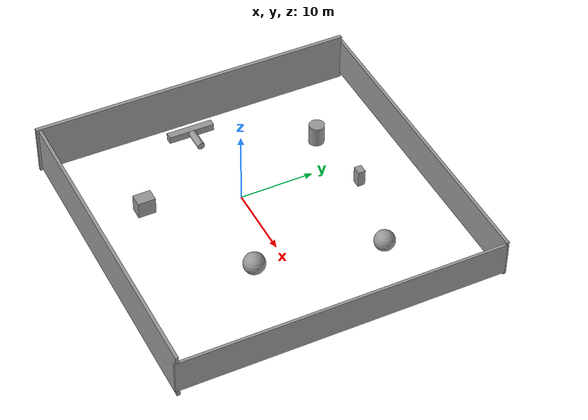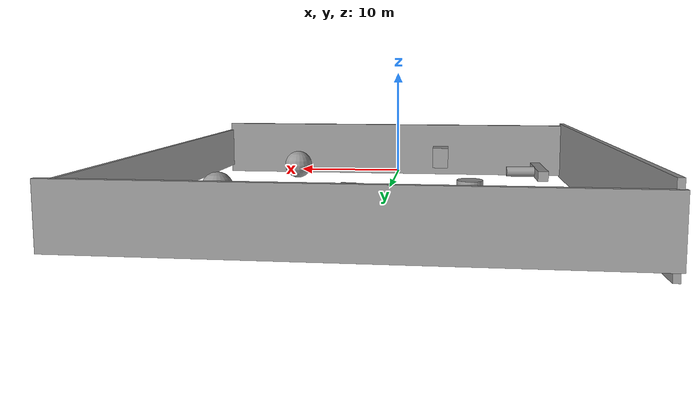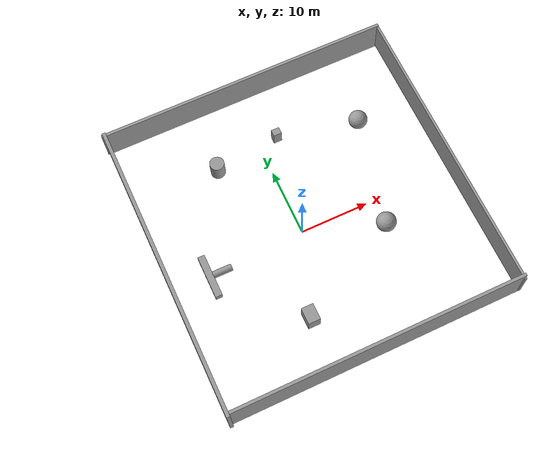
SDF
<?xml version='1.0'?>
<sdf version='1.7'>
  <model name='drawmap'>
    <link name='link'>
      <inertial>
        <mass>125.383</mass>
        <inertia>
          <ixx>439.645</ixx>
          <ixy>0</ixy>
          <ixz>0</ixz>
          <iyy>20672.9</iyy>
          <iyz>0</iyz>
          <izz>20237.3</izz>
        </inertia>
        <pose>0 0 0 0 -0 0</pose>
      </inertial>
      <self_collide>0</self_collide>
      <enable_wind>0</enable_wind>
      <kinematic>0</kinematic>
      <pose>1.9998 -19.5076 -3e-06 0 -0 0</pose>
      <visual name='visual'>
        <geometry>
          <box>
            <size>44.0074 0.440499 6.4717</size>
          </box>
        </geometry>
        <material>
          <script>
            <name>Gazebo/Grey</name>
            <uri>file://media/materials/scripts/gazebo.material</uri>
          </script>
          <shader type='pixel'/>
        </material>
        <pose>0 0 0 0 -0 0</pose>
        <transparency>0</transparency>
        <cast_shadows>1</cast_shadows>
      </visual>
      <collision name='collision'>
        <laser_retro>0</laser_retro>
        <max_contacts>10</max_contacts>
        <pose>0 0 0 0 -0 0</pose>
        <geometry>
          <box>
            <size>44.0074 0.440499 6.4717</size>
          </box>
        </geometry>
        <surface>
          <friction>
            <ode>
              <mu>1</mu>
              <mu2>1</mu2>
              <fdir1>0 0 0</fdir1>
              <slip1>0</slip1>
              <slip2>0</slip2>
            </ode>
            <torsional>
              <coefficient>1</coefficient>
              <patch_radius>0</patch_radius>
              <surface_radius>0</surface_radius>
              <use_patch_radius>1</use_patch_radius>
              <ode>
                <slip>0</slip>
              </ode>
            </torsional>
          </friction>
          <bounce>
            <restitution_coefficient>0</restitution_coefficient>
            <threshold>1e+06</threshold>
          </bounce>
          <contact>
            <collide_without_contact>0</collide_without_contact>
            <collide_without_contact_bitmask>1</collide_without_contact_bitmask>
            <collide_bitmask>1</collide_bitmask>
            <ode>
              <soft_cfm>0</soft_cfm>
              <soft_erp>0.2</soft_erp>
              <kp>1e+13</kp>
              <kd>1</kd>
              <max_vel>0.01</max_vel>
              <min_depth>0</min_depth>
            </ode>
            <bullet>
              <split_impulse>1</split_impulse>
              <split_impulse_penetration_threshold>-0.01</split_impulse_penetration_threshold>
              <soft_cfm>0</soft_cfm>
              <soft_erp>0.2</soft_erp>
              <kp>1e+13</kp>
              <kd>1</kd>
            </bullet>
          </contact>
        </surface>
      </collision>
    </link>
    <link name='link_0'>
      <inertial>
        <mass>102.937</mass>
        <inertia>
          <ixx>252.539</ixx>
          <ixy>0</ixy>
          <ixz>0</ixz>
          <iyy>17017.1</iyy>
          <iyz>0</iyz>
          <izz>16767.7</izz>
        </inertia>
        <pose>0 0 0 0 -0 0</pose>
      </inertial>
      <pose>1.90836 24.4809 -0.000235 -1e-05 0 0</pose>
      <visual name='visual'>
        <pose>0 0 0 0 -0 0</pose>
        <geometry>
          <box>
            <size>44.21 0.430597 5.40874</size>
          </box>
        </geometry>
        <material>
          <lighting>1</lighting>
          <script>
            <uri>file://media/materials/scripts/gazebo.material</uri>
            <name>Gazebo/Grey</name>
          </script>
          <shader type='pixel'/>
        </material>
        <transparency>0</transparency>
        <cast_shadows>1</cast_shadows>
      </visual>
      <collision name='collision'>
        <laser_retro>0</laser_retro>
        <max_contacts>10</max_contacts>
        <pose>0 0 0 0 -0 0</pose>
        <geometry>
          <box>
            <size>44.21 0.430597 5.40874</size>
          </box>
        </geometry>
        <surface>
          <friction>
            <ode>
              <mu>1</mu>
              <mu2>1</mu2>
              <fdir1>0 0 0</fdir1>
              <slip1>0</slip1>
              <slip2>0</slip2>
            </ode>
            <torsional>
              <coefficient>1</coefficient>
              <patch_radius>0</patch_radius>
              <surface_radius>0</surface_radius>
              <use_patch_radius>1</use_patch_radius>
              <ode>
                <slip>0</slip>
              </ode>
            </torsional>
          </friction>
          <bounce>
            <restitution_coefficient>0</restitution_coefficient>
            <threshold>1e+06</threshold>
          </bounce>
          <contact>
            <collide_without_contact>0</collide_without_contact>
            <collide_without_contact_bitmask>1</collide_without_contact_bitmask>
            <collide_bitmask>1</collide_bitmask>
            <ode>
              <soft_cfm>0</soft_cfm>
              <soft_erp>0.2</soft_erp>
              <kp>1e+13</kp>
              <kd>1</kd>
              <max_vel>0.01</max_vel>
              <min_depth>0</min_depth>
            </ode>
            <bullet>
              <split_impulse>1</split_impulse>
              <split_impulse_penetration_threshold>-0.01</split_impulse_penetration_threshold>
              <soft_cfm>0</soft_cfm>
              <soft_erp>0.2</soft_erp>
              <kp>1e+13</kp>
              <kd>1</kd>
            </bullet>
          </contact>
        </surface>
      </collision>
    </link>
    <link name='link_1'>
      <inertial>
        <mass>79.5946</mass>
        <inertia>
          <ixx>13185.1</ixx>
          <ixy>0</ixy>
          <ixz>0</ixz>
          <iyy>149.915</iyy>
          <iyz>0</iyz>
          <izz>13037.1</izz>
        </inertia>
        <pose>0 0 0 0 -0 0</pose>
      </inertial>
      <pose>23.8999 2.25469 -1.7e-05 -1e-05 0 0</pose>
      <visual name='visual'>
        <pose>0 0 0 0 -0 0</pose>
        <geometry>
          <box>
            <size>0.378952 44.3327 4.73901</size>
          </box>
        </geometry>
        <material>
          <lighting>1</lighting>
          <script>
            <uri>file://media/materials/scripts/gazebo.material</uri>
            <name>Gazebo/Grey</name>
          </script>
          <shader type='pixel'/>
        </material>
        <transparency>0</transparency>
        <cast_shadows>1</cast_shadows>
      </visual>
      <collision name='collision'>
        <laser_retro>0</laser_retro>
        <max_contacts>10</max_contacts>
        <pose>0 0 0 0 -0 0</pose>
        <geometry>
          <box>
            <size>0.378952 44.3327 4.73901</size>
          </box>
        </geometry>
        <surface>
          <friction>
            <ode>
              <mu>1</mu>
              <mu2>1</mu2>
              <fdir1>0 0 0</fdir1>
              <slip1>0</slip1>
              <slip2>0</slip2>
            </ode>
            <torsional>
              <coefficient>1</coefficient>
              <patch_radius>0</patch_radius>
              <surface_radius>0</surface_radius>
              <use_patch_radius>1</use_patch_radius>
              <ode>
                <slip>0</slip>
              </ode>
            </torsional>
          </friction>
          <bounce>
            <restitution_coefficient>0</restitution_coefficient>
            <threshold>1e+06</threshold>
          </bounce>
          <contact>
            <collide_without_contact>0</collide_without_contact>
            <collide_without_contact_bitmask>1</collide_without_contact_bitmask>
            <collide_bitmask>1</collide_bitmask>
            <ode>
              <soft_cfm>0</soft_cfm>
              <soft_erp>0.2</soft_erp>
              <kp>1e+13</kp>
              <kd>1</kd>
              <max_vel>0.01</max_vel>
              <min_depth>0</min_depth>
            </ode>
            <bullet>
              <split_impulse>1</split_impulse>
              <split_impulse_penetration_threshold>-0.01</split_impulse_penetration_threshold>
              <soft_cfm>0</soft_cfm>
              <soft_erp>0.2</soft_erp>
              <kp>1e+13</kp>
              <kd>1</kd>
            </bullet>
          </contact>
        </surface>
      </collision>
    </link>
    <link name='link_2'>
      <inertial>
        <mass>161.549</mass>
        <inertia>
          <ixx>27290.4</ixx>
          <ixy>0</ixy>
          <ixz>0</ixz>
          <iyy>646.814</iyy>
          <iyz>0</iyz>
          <izz>26651</izz>
        </inertia>
        <pose>0 0 0 0 -0 0</pose>
      </inertial>
      <pose>-19.7468 2.19871 -1.7e-05 -1e-05 0 0</pose>
      <visual name='visual'>
        <pose>0 0 0 0 -0 0</pose>
        <geometry>
          <box>
            <size>0.525287 44.4903 6.91158</size>
          </box>
        </geometry>
        <material>
          <lighting>1</lighting>
          <script>
            <uri>file://media/materials/scripts/gazebo.material</uri>
            <name>Gazebo/Grey</name>
          </script>
          <shader type='pixel'/>
        </material>
        <transparency>0</transparency>
        <cast_shadows>1</cast_shadows>
      </visual>
      <collision name='collision'>
        <laser_retro>0</laser_retro>
        <max_contacts>10</max_contacts>
        <pose>0 0 0 0 -0 0</pose>
        <geometry>
          <box>
            <size>0.525287 44.4903 6.91158</size>
          </box>
        </geometry>
        <surface>
          <friction>
            <ode>
              <mu>1</mu>
              <mu2>1</mu2>
              <fdir1>0 0 0</fdir1>
              <slip1>0</slip1>
              <slip2>0</slip2>
            </ode>
            <torsional>
              <coefficient>1</coefficient>
              <patch_radius>0</patch_radius>
              <surface_radius>0</surface_radius>
              <use_patch_radius>1</use_patch_radius>
              <ode>
                <slip>0</slip>
              </ode>
            </torsional>
          </friction>
          <bounce>
            <restitution_coefficient>0</restitution_coefficient>
            <threshold>1e+06</threshold>
          </bounce>
          <contact>
            <collide_without_contact>0</collide_without_contact>
            <collide_without_contact_bitmask>1</collide_without_contact_bitmask>
            <collide_bitmask>1</collide_bitmask>
            <ode>
              <soft_cfm>0</soft_cfm>
              <soft_erp>0.2</soft_erp>
              <kp>1e+13</kp>
              <kd>1</kd>
              <max_vel>0.01</max_vel>
              <min_depth>0</min_depth>
            </ode>
            <bullet>
              <split_impulse>1</split_impulse>
              <split_impulse_penetration_threshold>-0.01</split_impulse_penetration_threshold>
              <soft_cfm>0</soft_cfm>
              <soft_erp>0.2</soft_erp>
              <kp>1e+13</kp>
              <kd>1</kd>
            </bullet>
          </contact>
        </surface>
      </collision>
    </link>
    <link name='link_3'>
      <inertial>
        <mass>10.0397</mass>
        <inertia>
          <ixx>9.39721</ixx>
          <ixy>0</ixy>
          <ixz>0</ixz>
          <iyy>7.2248</iyy>
          <iyz>0</iyz>
          <izz>7.52538</izz>
        </inertia>
        <pose>0 0 0 0 -0 0</pose>
      </inertial>
      <pose>-4.21846 -11.5843 0.008663 -1e-05 0 0</pose>
      <visual name='visual'>
        <pose>0 0 0 0 -0 0</pose>
        <geometry>
          <box>
            <size>1.7886 2.40742 2.33161</size>
          </box>
        </geometry>
        <material>
          <lighting>1</lighting>
          <script>
            <uri>file://media/materials/scripts/gazebo.material</uri>
            <name>Gazebo/Grey</name>
          </script>
          <shader type='pixel'/>
        </material>
        <transparency>0</transparency>
        <cast_shadows>1</cast_shadows>
      </visual>
      <collision name='collision'>
        <laser_retro>0</laser_retro>
        <max_contacts>10</max_contacts>
        <pose>0 0 0 0 -0 0</pose>
        <geometry>
          <box>
            <size>1.7886 2.40742 2.33161</size>
          </box>
        </geometry>
        <surface>
          <friction>
            <ode>
              <mu>1</mu>
              <mu2>1</mu2>
              <fdir1>0 0 0</fdir1>
              <slip1>0</slip1>
              <slip2>0</slip2>
            </ode>
            <torsional>
              <coefficient>1</coefficient>
              <patch_radius>0</patch_radius>
              <surface_radius>0</surface_radius>
              <use_patch_radius>1</use_patch_radius>
              <ode>
                <slip>0</slip>
              </ode>
            </torsional>
          </friction>
          <bounce>
            <restitution_coefficient>0</restitution_coefficient>
            <threshold>1e+06</threshold>
          </bounce>
          <contact>
            <collide_without_contact>0</collide_without_contact>
            <collide_without_contact_bitmask>1</collide_without_contact_bitmask>
            <collide_bitmask>1</collide_bitmask>
            <ode>
              <soft_cfm>0</soft_cfm>
              <soft_erp>0.2</soft_erp>
              <kp>1e+13</kp>
              <kd>1</kd>
              <max_vel>0.01</max_vel>
              <min_depth>0</min_depth>
            </ode>
            <bullet>
              <split_impulse>1</split_impulse>
              <split_impulse_penetration_threshold>-0.01</split_impulse_penetration_threshold>
              <soft_cfm>0</soft_cfm>
              <soft_erp>0.2</soft_erp>
              <kp>1e+13</kp>
              <kd>1</kd>
            </bullet>
          </contact>
        </surface>
      </collision>
    </link>
    <link name='link_4'>
      <inertial>
        <mass>12.7062</mass>
        <inertia>
          <ixx>12.0984</ixx>
          <ixy>0</ixy>
          <ixz>0</ixz>
          <iyy>12.0984</iyy>
          <iyz>0</iyz>
          <izz>7.10261</izz>
        </inertia>
        <pose>0 0 0 0 -0 0</pose>
      </inertial>
      <pose>-6.83841 14.1696 -0.000134 -1e-05 0 0</pose>
      <visual name='visual'>
        <pose>0 0 0 0 -0 0</pose>
        <geometry>
          <cylinder>
            <radius>1.05734</radius>
            <length>2.84113</length>
          </cylinder>
        </geometry>
        <material>
          <lighting>1</lighting>
          <script>
            <uri>file://media/materials/scripts/gazebo.material</uri>
            <name>Gazebo/Grey</name>
          </script>
          <shader type='pixel'/>
        </material>
        <transparency>0</transparency>
        <cast_shadows>1</cast_shadows>
      </visual>
      <collision name='collision'>
        <laser_retro>0</laser_retro>
        <max_contacts>10</max_contacts>
        <pose>0 0 0 0 -0 0</pose>
        <geometry>
          <cylinder>
            <radius>1.05734</radius>
            <length>2.84113</length>
          </cylinder>
        </geometry>
        <surface>
          <friction>
            <ode>
              <mu>1</mu>
              <mu2>1</mu2>
              <fdir1>0 0 0</fdir1>
              <slip1>0</slip1>
              <slip2>0</slip2>
            </ode>
            <torsional>
              <coefficient>1</coefficient>
              <patch_radius>0</patch_radius>
              <surface_radius>0</surface_radius>
              <use_patch_radius>1</use_patch_radius>
              <ode>
                <slip>0</slip>
              </ode>
            </torsional>
          </friction>
          <bounce>
            <restitution_coefficient>0</restitution_coefficient>
            <threshold>1e+06</threshold>
          </bounce>
          <contact>
            <collide_without_contact>0</collide_without_contact>
            <collide_without_contact_bitmask>1</collide_without_contact_bitmask>
            <collide_bitmask>1</collide_bitmask>
            <ode>
              <soft_cfm>0</soft_cfm>
              <soft_erp>0.2</soft_erp>
              <kp>1e+13</kp>
              <kd>1</kd>
              <max_vel>0.01</max_vel>
              <min_depth>0</min_depth>
            </ode>
            <bullet>
              <split_impulse>1</split_impulse>
              <split_impulse_penetration_threshold>-0.01</split_impulse_penetration_threshold>
              <soft_cfm>0</soft_cfm>
              <soft_erp>0.2</soft_erp>
              <kp>1e+13</kp>
              <kd>1</kd>
            </bullet>
          </contact>
        </surface>
      </collision>
    </link>
    <link name='link_5'>
      <inertial>
        <mass>21.2102</mass>
        <inertia>
          <ixx>16.252</ixx>
          <ixy>0</ixy>
          <ixz>0</ixz>
          <iyy>16.252</iyy>
          <iyz>0</iyz>
          <izz>16.252</izz>
        </inertia>
        <pose>0 0 0 0 -0 0</pose>
      </inertial>
      <pose>14.861 12.5331 0.125649 -1e-05 0 0</pose>
      <visual name='visual'>
        <pose>0 0 0 0 -0 0</pose>
        <geometry>
          <sphere>
            <radius>1.38405</radius>
          </sphere>
        </geometry>
        <material>
          <lighting>1</lighting>
          <script>
            <uri>file://media/materials/scripts/gazebo.material</uri>
            <name>Gazebo/Grey</name>
          </script>
          <shader type='pixel'/>
        </material>
        <transparency>0</transparency>
        <cast_shadows>1</cast_shadows>
      </visual>
      <collision name='collision'>
        <laser_retro>0</laser_retro>
        <max_contacts>10</max_contacts>
        <pose>0 0 0 0 -0 0</pose>
        <geometry>
          <sphere>
            <radius>1.38405</radius>
          </sphere>
        </geometry>
        <surface>
          <friction>
            <ode>
              <mu>1</mu>
              <mu2>1</mu2>
              <fdir1>0 0 0</fdir1>
              <slip1>0</slip1>
              <slip2>0</slip2>
            </ode>
            <torsional>
              <coefficient>1</coefficient>
              <patch_radius>0</patch_radius>
              <surface_radius>0</surface_radius>
              <use_patch_radius>1</use_patch_radius>
              <ode>
                <slip>0</slip>
              </ode>
            </torsional>
          </friction>
          <bounce>
            <restitution_coefficient>0</restitution_coefficient>
            <threshold>1e+06</threshold>
          </bounce>
          <contact>
            <collide_without_contact>0</collide_without_contact>
            <collide_without_contact_bitmask>1</collide_without_contact_bitmask>
            <collide_bitmask>1</collide_bitmask>
            <ode>
              <soft_cfm>0</soft_cfm>
              <soft_erp>0.2</soft_erp>
              <kp>1e+13</kp>
              <kd>1</kd>
              <max_vel>0.01</max_vel>
              <min_depth>0</min_depth>
            </ode>
            <bullet>
              <split_impulse>1</split_impulse>
              <split_impulse_penetration_threshold>-0.01</split_impulse_penetration_threshold>
              <soft_cfm>0</soft_cfm>
              <soft_erp>0.2</soft_erp>
              <kp>1e+13</kp>
              <kd>1</kd>
            </bullet>
          </contact>
        </surface>
      </collision>
    </link>
    <link name='link_6'>
      <inertial>
        <mass>24.433</mass>
        <inertia>
          <ixx>20.5727</ixx>
          <ixy>0</ixy>
          <ixz>0</ixz>
          <iyy>20.5727</iyy>
          <iyz>0</iyz>
          <izz>20.5727</izz>
        </inertia>
        <pose>0 0 0 0 -0 0</pose>
      </inertial>
      <pose>11.2895 -3.63527 4e-05 -1e-05 0 0</pose>
      <visual name='visual'>
        <pose>0 0 0 0 -0 0</pose>
        <geometry>
          <sphere>
            <radius>1.45087</radius>
          </sphere>
        </geometry>
        <material>
          <lighting>1</lighting>
          <script>
            <uri>file://media/materials/scripts/gazebo.material</uri>
            <name>Gazebo/Grey</name>
          </script>
          <shader type='pixel'/>
        </material>
        <transparency>0</transparency>
        <cast_shadows>1</cast_shadows>
      </visual>
      <collision name='collision'>
        <laser_retro>0</laser_retro>
        <max_contacts>10</max_contacts>
        <pose>0 0 0 0 -0 0</pose>
        <geometry>
          <sphere>
            <radius>1.45087</radius>
          </sphere>
        </geometry>
        <surface>
          <friction>
            <ode>
              <mu>1</mu>
              <mu2>1</mu2>
              <fdir1>0 0 0</fdir1>
              <slip1>0</slip1>
              <slip2>0</slip2>
            </ode>
            <torsional>
              <coefficient>1</coefficient>
              <patch_radius>0</patch_radius>
              <surface_radius>0</surface_radius>
              <use_patch_radius>1</use_patch_radius>
              <ode>
                <slip>0</slip>
              </ode>
            </torsional>
          </friction>
          <bounce>
            <restitution_coefficient>0</restitution_coefficient>
            <threshold>1e+06</threshold>
          </bounce>
          <contact>
            <collide_without_contact>0</collide_without_contact>
            <collide_without_contact_bitmask>1</collide_without_contact_bitmask>
            <collide_bitmask>1</collide_bitmask>
            <ode>
              <soft_cfm>0</soft_cfm>
              <soft_erp>0.2</soft_erp>
              <kp>1e+13</kp>
              <kd>1</kd>
              <max_vel>0.01</max_vel>
              <min_depth>0</min_depth>
            </ode>
            <bullet>
              <split_impulse>1</split_impulse>
              <split_impulse_penetration_threshold>-0.01</split_impulse_penetration_threshold>
              <soft_cfm>0</soft_cfm>
              <soft_erp>0.2</soft_erp>
              <kp>1e+13</kp>
              <kd>1</kd>
            </bullet>
          </contact>
        </surface>
      </collision>
    </link>
    <link name='link_7'>
      <inertial>
        <mass>2.85741</mass>
        <inertia>
          <ixx>1.52346</ixx>
          <ixy>0</ixy>
          <ixz>0</ixz>
          <iyy>1.64552</iyy>
          <iyz>0</iyz>
          <izz>0.598295</izz>
        </inertia>
        <pose>0 0 0 0 -0 0</pose>
      </inertial>
      <pose>2.99276 15.3201 -0.000145 -1e-05 0 0</pose>
      <visual name='visual'>
        <pose>0 0 0 0 -0 0</pose>
        <geometry>
          <box>
            <size>1.22988 1 2.32334</size>
          </box>
        </geometry>
        <material>
          <lighting>1</lighting>
          <script>
            <uri>file://media/materials/scripts/gazebo.material</uri>
            <name>Gazebo/Grey</name>
          </script>
          <shader type='pixel'/>
        </material>
        <transparency>0</transparency>
        <cast_shadows>1</cast_shadows>
      </visual>
      <collision name='collision'>
        <laser_retro>0</laser_retro>
        <max_contacts>10</max_contacts>
        <pose>0 0 0 0 -0 0</pose>
        <geometry>
          <box>
            <size>1.22988 1 2.32334</size>
          </box>
        </geometry>
        <surface>
          <friction>
            <ode>
              <mu>1</mu>
              <mu2>1</mu2>
              <fdir1>0 0 0</fdir1>
              <slip1>0</slip1>
              <slip2>0</slip2>
            </ode>
            <torsional>
              <coefficient>1</coefficient>
              <patch_radius>0</patch_radius>
              <surface_radius>0</surface_radius>
              <use_patch_radius>1</use_patch_radius>
              <ode>
                <slip>0</slip>
              </ode>
            </torsional>
          </friction>
          <bounce>
            <restitution_coefficient>0</restitution_coefficient>
            <threshold>1e+06</threshold>
          </bounce>
          <contact>
            <collide_without_contact>0</collide_without_contact>
            <collide_without_contact_bitmask>1</collide_without_contact_bitmask>
            <collide_bitmask>1</collide_bitmask>
            <ode>
              <soft_cfm>0</soft_cfm>
              <soft_erp>0.2</soft_erp>
              <kp>1e+13</kp>
              <kd>1</kd>
              <max_vel>0.01</max_vel>
              <min_depth>0</min_depth>
            </ode>
            <bullet>
              <split_impulse>1</split_impulse>
              <split_impulse_penetration_threshold>-0.01</split_impulse_penetration_threshold>
              <soft_cfm>0</soft_cfm>
              <soft_erp>0.2</soft_erp>
              <kp>1e+13</kp>
              <kd>1</kd>
            </bullet>
          </contact>
        </surface>
      </collision>
    </link>
    <link name='link_8'>
      <inertial>
        <mass>6.3232</mass>
        <inertia>
          <ixx>21.5953</ixx>
          <ixy>0</ixy>
          <ixz>0</ixz>
          <iyy>1.05387</iyy>
          <iyz>0</iyz>
          <izz>21.5953</izz>
        </inertia>
        <pose>0 0 0 0 -0 0</pose>
      </inertial>
      <pose>-14.3142 -0.664974 1.1e-05 -1e-05 0 0</pose>
      <visual name='visual'>
        <pose>0 0 0 0 -0 0</pose>
        <geometry>
          <box>
            <size>1 6.32322 1</size>
          </box>
        </geometry>
        <material>
          <lighting>1</lighting>
          <script>
            <uri>file://media/materials/scripts/gazebo.material</uri>
            <name>Gazebo/Grey</name>
          </script>
          <shader type='pixel'/>
        </material>
        <transparency>0</transparency>
        <cast_shadows>1</cast_shadows>
      </visual>
      <collision name='collision'>
        <laser_retro>0</laser_retro>
        <max_contacts>10</max_contacts>
        <pose>0 0 0 0 -0 0</pose>
        <geometry>
          <box>
            <size>1 6.32322 1</size>
          </box>
        </geometry>
        <surface>
          <friction>
            <ode>
              <mu>1</mu>
              <mu2>1</mu2>
              <fdir1>0 0 0</fdir1>
              <slip1>0</slip1>
              <slip2>0</slip2>
            </ode>
            <torsional>
              <coefficient>1</coefficient>
              <patch_radius>0</patch_radius>
              <surface_radius>0</surface_radius>
              <use_patch_radius>1</use_patch_radius>
              <ode>
                <slip>0</slip>
              </ode>
            </torsional>
          </friction>
          <bounce>
            <restitution_coefficient>0</restitution_coefficient>
            <threshold>1e+06</threshold>
          </bounce>
          <contact>
            <collide_without_contact>0</collide_without_contact>
            <collide_without_contact_bitmask>1</collide_without_contact_bitmask>
            <collide_bitmask>1</collide_bitmask>
            <ode>
              <soft_cfm>0</soft_cfm>
              <soft_erp>0.2</soft_erp>
              <kp>1e+13</kp>
              <kd>1</kd>
              <max_vel>0.01</max_vel>
              <min_depth>0</min_depth>
            </ode>
            <bullet>
              <split_impulse>1</split_impulse>
              <split_impulse_penetration_threshold>-0.01</split_impulse_penetration_threshold>
              <soft_cfm>0</soft_cfm>
              <soft_erp>0.2</soft_erp>
              <kp>1e+13</kp>
              <kd>1</kd>
            </bullet>
          </contact>
        </surface>
      </collision>
    </link>
    <link name='link_9'>
      <inertial>
        <mass>2.83157</mass>
        <inertia>
          <ixx>2.06889</ixx>
          <ixy>0</ixy>
          <ixz>0</ixz>
          <iyy>2.06889</iyy>
          <iyz>0</iyz>
          <izz>0.353946</izz>
        </inertia>
        <pose>0 0 0 0 -0 0</pose>
      </inertial>
      <pose>-12.4784 -0.571646 0.004403 -3.14066 1.5603 -3.14066</pose>
      <visual name='visual'>
        <pose>0 0 0 0 -0 0</pose>
        <geometry>
          <cylinder>
            <radius>0.5</radius>
            <length>2.83157</length>
          </cylinder>
        </geometry>
        <material>
          <lighting>1</lighting>
          <script>
            <uri>file://media/materials/scripts/gazebo.material</uri>
            <name>Gazebo/Grey</name>
          </script>
          <shader type='pixel'/>
        </material>
        <transparency>0</transparency>
        <cast_shadows>1</cast_shadows>
      </visual>
      <collision name='collision'>
        <laser_retro>0</laser_retro>
        <max_contacts>10</max_contacts>
        <pose>0 0 0 0 -0 0</pose>
        <geometry>
          <cylinder>
            <radius>0.5</radius>
            <length>2.83157</length>
          </cylinder>
        </geometry>
        <surface>
          <friction>
            <ode>
              <mu>1</mu>
              <mu2>1</mu2>
              <fdir1>0 0 0</fdir1>
              <slip1>0</slip1>
              <slip2>0</slip2>
            </ode>
            <torsional>
              <coefficient>1</coefficient>
              <patch_radius>0</patch_radius>
              <surface_radius>0</surface_radius>
              <use_patch_radius>1</use_patch_radius>
              <ode>
                <slip>0</slip>
              </ode>
            </torsional>
          </friction>
          <bounce>
            <restitution_coefficient>0</restitution_coefficient>
            <threshold>1e+06</threshold>
          </bounce>
          <contact>
            <collide_without_contact>0</collide_without_contact>
            <collide_without_contact_bitmask>1</collide_without_contact_bitmask>
            <collide_bitmask>1</collide_bitmask>
            <ode>
              <soft_cfm>0</soft_cfm>
              <soft_erp>0.2</soft_erp>
              <kp>1e+13</kp>
              <kd>1</kd>
              <max_vel>0.01</max_vel>
              <min_depth>0</min_depth>
            </ode>
            <bullet>
              <split_impulse>1</split_impulse>
              <split_impulse_penetration_threshold>-0.01</split_impulse_penetration_threshold>
              <soft_cfm>0</soft_cfm>
              <soft_erp>0.2</soft_erp>
              <kp>1e+13</kp>
              <kd>1</kd>
            </bullet>
          </contact>
        </surface>
      </collision>
    </link>
    <static>0</static>
    <allow_auto_disable>1</allow_auto_disable>
  </model>
</sdf>
